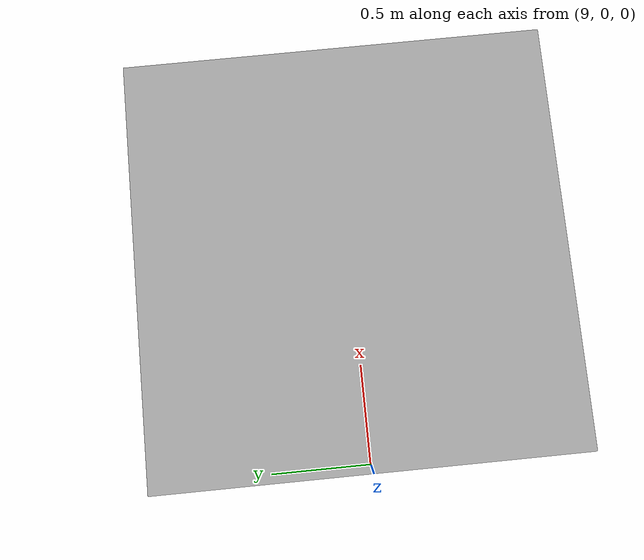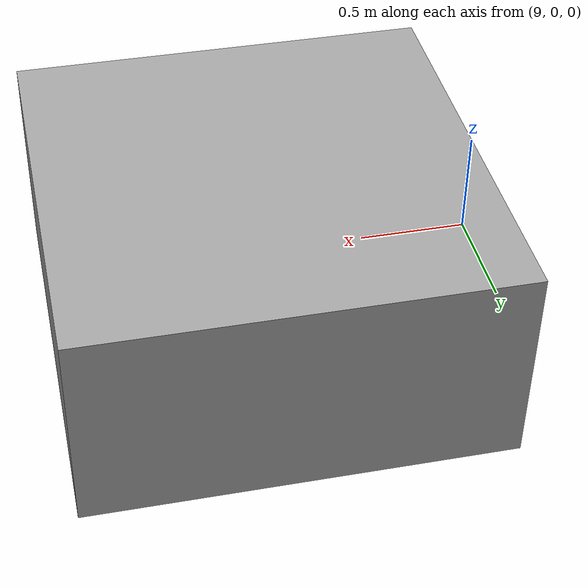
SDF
<?xml version='1.0'?>
<sdf version='1.5'>
	<model name="platform">
		<static>true</static>
		<pose>10 0 0 0 0 0</pose>
		<link name="box">
			<pose>0 0 0 0 0 0</pose>

			<collision name='collision'>
				<geometry>
					<box>
						<size>2 2 1</size>
					</box>
				</geometry>
			</collision>

			<visual name='visual'>
				<geometry>
					<mesh> <uri> model://platform/box.dae </uri></mesh>
				</geometry>
				<material>
					<script>
						<uri>model://platform/materials/dronecourse.material</uri>
						<name>dronecourse/platform</name>
					</script>
				</material>
			</visual>

			<sensor name='contact' type='contact'>
			  <contact>
				<collision>collision</collision>
			  </contact>
			</sensor>
		</link>
		<plugin name='Platform' filename='libgazebo_platform_plugin.so'>
			<robotNamespace/>
			<platformSubTopic>platform</platformSubTopic>
			<contactSubTopic>platform/box/contact</contactSubTopic>
		</plugin>
	</model>
</sdf>
